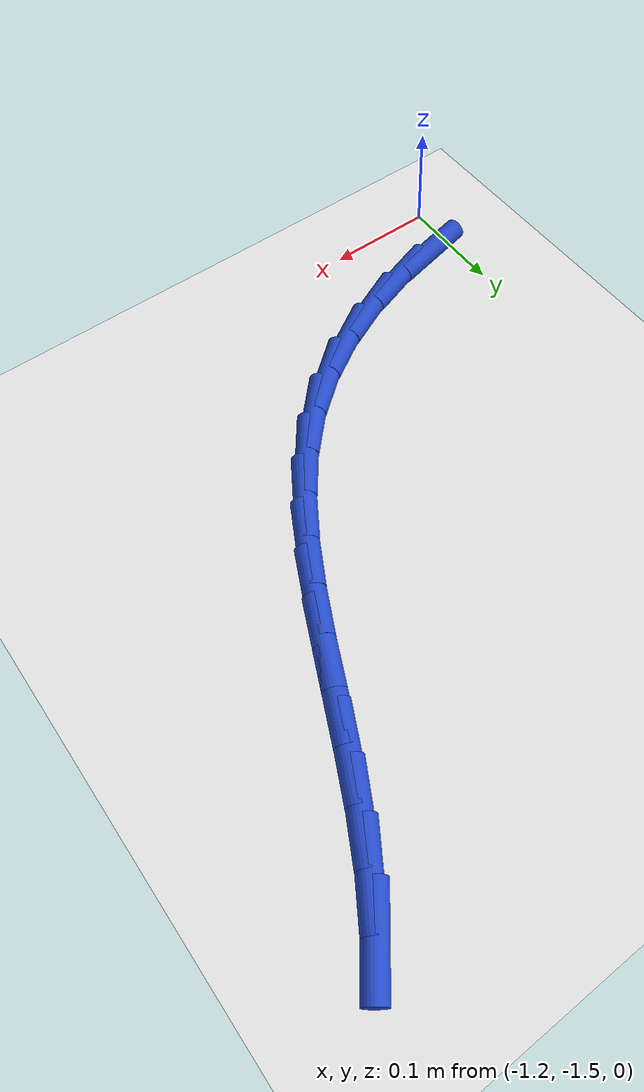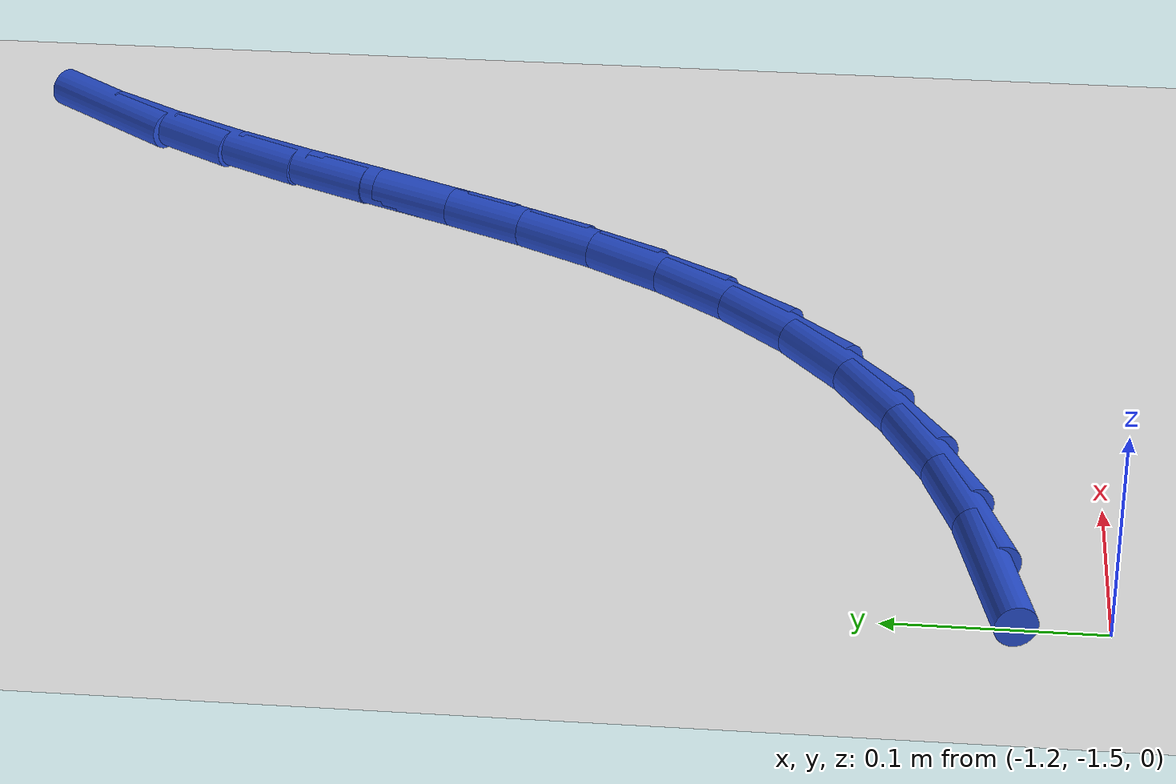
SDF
<sdf version="1.6">
 <world name="default">
  <model name="ground_plane">
   <static>1</static>
   <link name="link">
    <collision name="collision">
     <geometry><plane><normal>0 0 1</normal><size>100 100</size></plane></geometry>
     <surface><friction><ode><mu>100</mu><mu2>50</mu2></ode></friction></surface>
    </collision>
    <visual name="visual">
     <cast_shadows>0</cast_shadows>
     <geometry><plane><normal>0 0 1</normal><size>100 100</size></plane></geometry>
     <material>
      <script><uri>file://media/materials/scripts/gazebo.material</uri><name>Gazebo/WhiteGlow</name></script>
     </material>
    </visual>
   </link>
  </model>
  <model name="line">
   <link name="link_134">
    <pose>-1.172720501896441 -1.4496143499624485 0.01 0 1.57 0.21966185225818993</pose>
    <collision name="collision">
     <geometry><cylinder><radius>0.01</radius><length>0.08</length></cylinder></geometry>
    </collision>
    <visual name="visual">
     <material>
      <script><name>Gazebo/Blue</name><uri>file://media/materials/scripts/gazebo.material</uri></script>
     </material>
     <geometry><cylinder><radius>0.01</radius><length>0.08</length></cylinder></geometry>
    </visual>
   </link>
   <link name="link_135">
    <pose>-1.1267757359794617 -1.4393565197659628 0.01 0 1.57 0.32518562927686295</pose>
    <collision name="collision">
     <geometry><cylinder><radius>0.01</radius><length>0.08</length></cylinder></geometry>
    </collision>
    <visual name="visual">
     <material>
      <script><name>Gazebo/Blue</name><uri>file://media/materials/scripts/gazebo.material</uri></script>
     </material>
     <geometry><cylinder><radius>0.01</radius><length>0.08</length></cylinder></geometry>
    </visual>
   </link>
   <link name="link_136">
    <pose>-1.0822536667547171 -1.424345704955999 0.01 0 1.57 0.4349741341947296</pose>
    <collision name="collision">
     <geometry><cylinder><radius>0.01</radius><length>0.08</length></cylinder></geometry>
    </collision>
    <visual name="visual">
     <material>
      <script><name>Gazebo/Blue</name><uri>file://media/materials/scripts/gazebo.material</uri></script>
     </material>
     <geometry><cylinder><radius>0.01</radius><length>0.08</length></cylinder></geometry>
    </visual>
   </link>
   <link name="link_137">
    <pose>-1.0402048084779727 -1.4048074843608183 0.01 0 1.57 0.5541415087886944</pose>
    <collision name="collision">
     <geometry><cylinder><radius>0.01</radius><length>0.08</length></cylinder></geometry>
    </collision>
    <visual name="visual">
     <material>
      <script><name>Gazebo/Blue</name><uri>file://media/materials/scripts/gazebo.material</uri></script>
     </material>
     <geometry><cylinder><radius>0.01</radius><length>0.08</length></cylinder></geometry>
    </visual>
   </link>
   <link name="link_138">
    <pose>-1.001679675404995 -1.3809674368086822 0.01 0 1.57 0.6868061668972013</pose>
    <collision name="collision">
     <geometry><cylinder><radius>0.01</radius><length>0.08</length></cylinder></geometry>
    </collision>
    <visual name="visual">
     <material>
      <script><name>Gazebo/Blue</name><uri>file://media/materials/scripts/gazebo.material</uri></script>
     </material>
     <geometry><cylinder><radius>0.01</radius><length>0.08</length></cylinder></geometry>
    </visual>
   </link>
   <link name="link_139">
    <pose>-0.9676550266308428 -1.3530678782149528 0.01 0 1.57 0.8175116866518093</pose>
    <collision name="collision">
     <geometry><cylinder><radius>0.01</radius><length>0.08</length></cylinder></geometry>
    </collision>
    <visual name="visual">
     <material>
      <script><name>Gazebo/Blue</name><uri>file://media/materials/scripts/gazebo.material</uri></script>
     </material>
     <geometry><cylinder><radius>0.01</radius><length>0.08</length></cylinder></geometry>
    </visual>
   </link>
   <link name="link_140">
    <pose>-0.9381222997353011 -1.3215747212150892 0.01 0 1.57 0.929052962392131</pose>
    <collision name="collision">
     <geometry><cylinder><radius>0.01</radius><length>0.08</length></cylinder></geometry>
    </collision>
    <visual name="visual">
     <material>
      <script><name>Gazebo/Blue</name><uri>file://media/materials/scripts/gazebo.material</uri></script>
     </material>
     <geometry><cylinder><radius>0.01</radius><length>0.08</length></cylinder></geometry>
    </visual>
   </link>
   <link name="link_141">
    <pose>-0.9123707066126523 -1.2871132328863364 0.01 0 1.57 1.0181664920582565</pose>
    <collision name="collision">
     <geometry><cylinder><radius>0.01</radius><length>0.08</length></cylinder></geometry>
    </collision>
    <visual name="visual">
     <material>
      <script><name>Gazebo/Blue</name><uri>file://media/materials/scripts/gazebo.material</uri></script>
     </material>
     <geometry><cylinder><radius>0.01</radius><length>0.08</length></cylinder></geometry>
    </visual>
   </link>
   <link name="link_142">
    <pose>-0.8896743673065258 -1.2503121050645114 0.01 0 1.57 1.0843389364915403</pose>
    <collision name="collision">
     <geometry><cylinder><radius>0.01</radius><length>0.08</length></cylinder></geometry>
    </collision>
    <visual name="visual">
     <material>
      <script><name>Gazebo/Blue</name><uri>file://media/materials/scripts/gazebo.material</uri></script>
     </material>
     <geometry><cylinder><radius>0.01</radius><length>0.08</length></cylinder></geometry>
    </visual>
   </link>
   <link name="link_143">
    <pose>-0.8693074018605526 -1.2118000295854334 0.01 0 1.57 1.128251691520114</pose>
    <collision name="collision">
     <geometry><cylinder><radius>0.01</radius><length>0.08</length></cylinder></geometry>
    </collision>
    <visual name="visual">
     <material>
      <script><name>Gazebo/Blue</name><uri>file://media/materials/scripts/gazebo.material</uri></script>
     </material>
     <geometry><cylinder><radius>0.01</radius><length>0.08</length></cylinder></geometry>
    </visual>
   </link>
   <link name="link_144">
    <pose>-0.8505439303183618 -1.1722056982849196 0.01 0 1.57 1.15076370441404</pose>
    <collision name="collision">
     <geometry><cylinder><radius>0.01</radius><length>0.08</length></cylinder></geometry>
    </collision>
    <visual name="visual">
     <material>
      <script><name>Gazebo/Blue</name><uri>file://media/materials/scripts/gazebo.material</uri></script>
     </material>
     <geometry><cylinder><radius>0.01</radius><length>0.08</length></cylinder></geometry>
    </visual>
   </link>
   <link name="link_145">
    <pose>-0.8326580727235835 -1.1321578029987869 0.01 0 1.57 1.1523019995221233</pose>
    <collision name="collision">
     <geometry><cylinder><radius>0.01</radius><length>0.08</length></cylinder></geometry>
    </collision>
    <visual name="visual">
     <material>
      <script><name>Gazebo/Blue</name><uri>file://media/materials/scripts/gazebo.material</uri></script>
     </material>
     <geometry><cylinder><radius>0.01</radius><length>0.08</length></cylinder></geometry>
    </visual>
   </link>
   <link name="link_146">
    <pose>-0.8149239491198477 -1.0922850355628528 0.01 0 1.57 1.1325709858903301</pose>
    <collision name="collision">
     <geometry><cylinder><radius>0.01</radius><length>0.08</length></cylinder></geometry>
    </collision>
    <visual name="visual">
     <material>
      <script><name>Gazebo/Blue</name><uri>file://media/materials/scripts/gazebo.material</uri></script>
     </material>
     <geometry><cylinder><radius>0.01</radius><length>0.08</length></cylinder></geometry>
    </visual>
   </link>
   <link name="link_147">
    <pose>-0.7966156795507839 -1.0532160878129355 0.01 0 1.57 1.0904962173778527</pose>
    <collision name="collision">
     <geometry><cylinder><radius>0.01</radius><length>0.08</length></cylinder></geometry>
    </collision>
    <visual name="visual">
     <material>
      <script><name>Gazebo/Blue</name><uri>file://media/materials/scripts/gazebo.material</uri></script>
     </material>
     <geometry><cylinder><radius>0.01</radius><length>0.08</length></cylinder></geometry>
    </visual>
   </link>
   <link name="link_148">
    <pose>-0.7770073840600219 -1.0155796515848514 0.01 0 1.57 1.0244237064543158</pose>
    <collision name="collision">
     <geometry><cylinder><radius>0.01</radius><length>0.08</length></cylinder></geometry>
    </collision>
    <visual name="visual">
     <material>
      <script><name>Gazebo/Blue</name><uri>file://media/materials/scripts/gazebo.material</uri></script>
     </material>
     <geometry><cylinder><radius>0.01</radius><length>0.08</length></cylinder></geometry>
    </visual>
   </link>
   <link name="link_149">
    <pose>-0.7553731826911922 -0.9800044187144201 0.01 0 1.57 0.932727836533444</pose>
    <collision name="collision">
     <geometry><cylinder><radius>0.01</radius><length>0.08</length></cylinder></geometry>
    </collision>
    <visual name="visual">
     <material>
      <script><name>Gazebo/Blue</name><uri>file://media/materials/scripts/gazebo.material</uri></script>
     </material>
     <geometry><cylinder><radius>0.01</radius><length>0.08</length></cylinder></geometry>
    </visual>
   </link>
  </model>
 </world>
</sdf>
